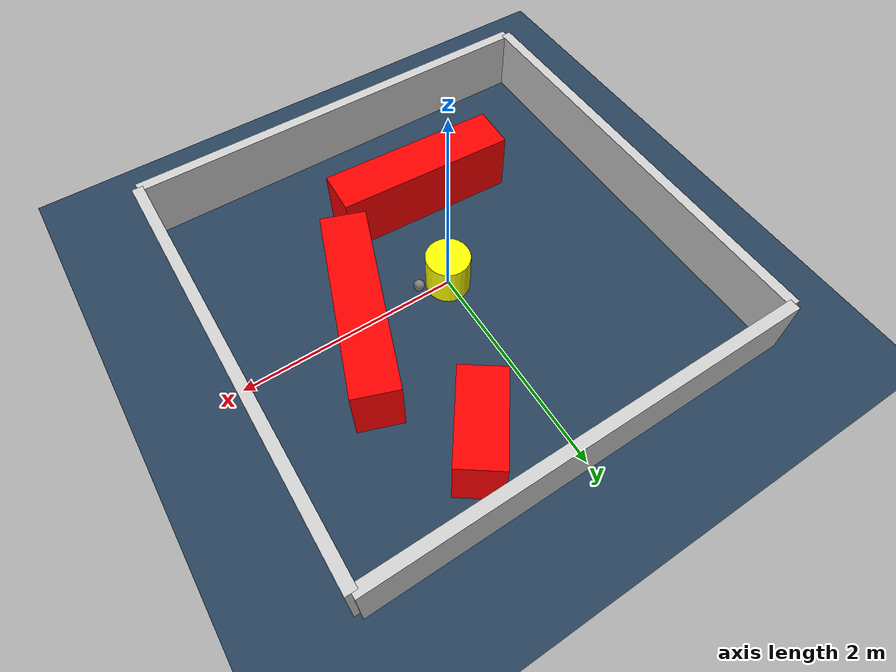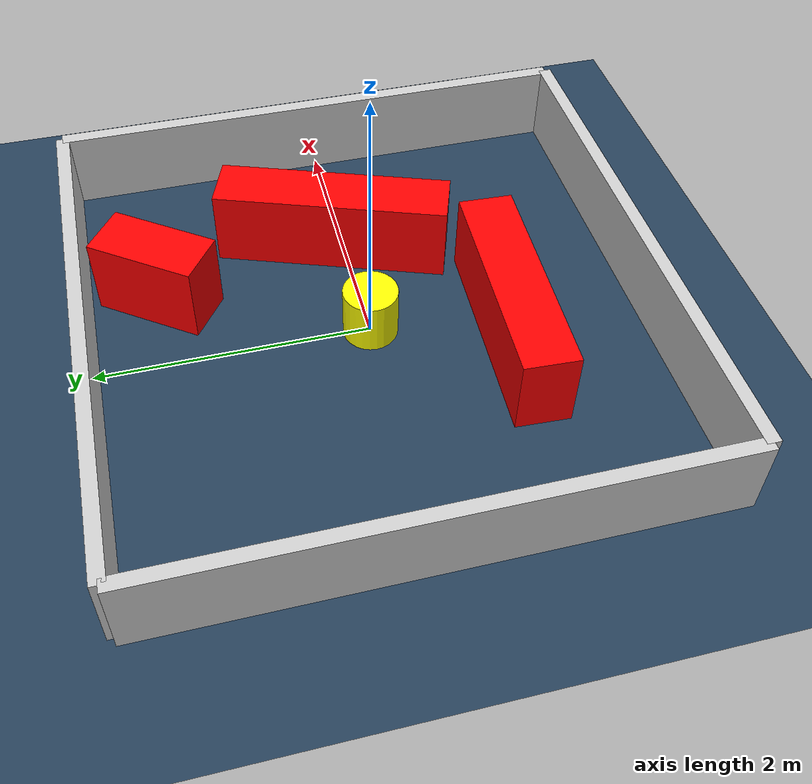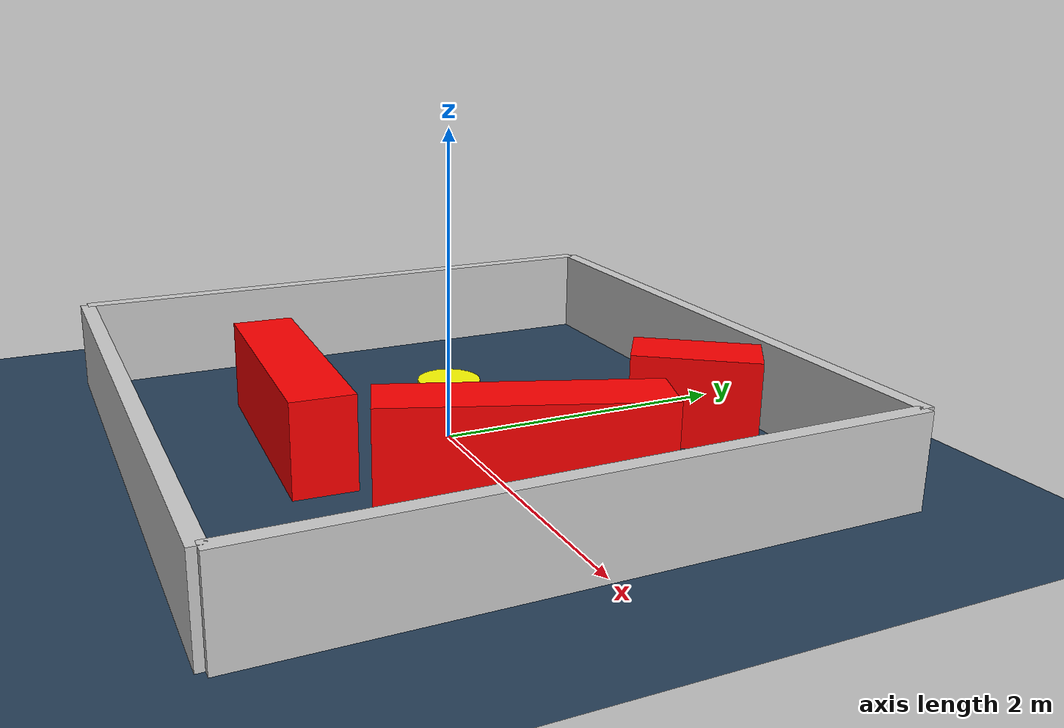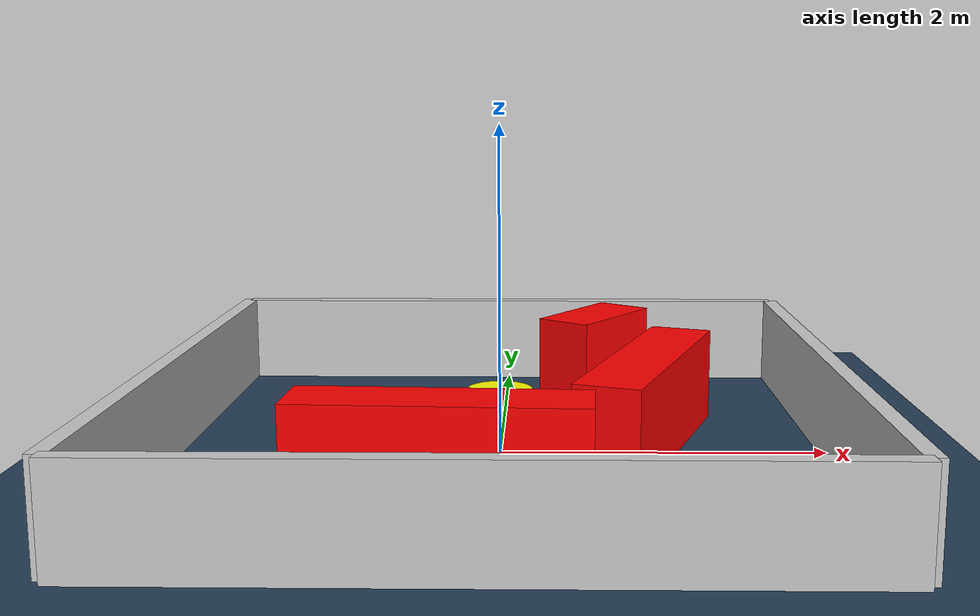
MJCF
<?xml version="1.0" ?>
<mujoco model="generated_environment">
  <option timestep="0.01" integrator="RK4" cone="elliptic"/>
  <default>
    <geom density="1"/>
  </default>
  <asset>
    <texture builtin="gradient" height="3072" rgb1="0.3 0.5 0.7" rgb2="0 0 0" type="skybox" width="512"/>
    <texture builtin="checker" height="300" mark="edge" markrgb="0.8 0.8 0.8" name="groundplane" rgb1="0.2 0.3 0.4" rgb2="0.1 0.2 0.3" type="2d" width="300"/>
    <material name="groundplane" reflectance="0.2" texrepeat="5 5" texture="groundplane" texuniform="true"/>
    <material name="robot" rgba="0.0 1.0 0.0 1"/>
  </asset>
  <worldbody>
    <light dir="0 0 -1" directional="true" pos="0 0 1.5"/>
    <geom condim="4" friction="1.0 0.005 0.001" material="groundplane" name="floor" size="0 0 0.05" type="plane"/>
    <body name="walls">
      <geom name="wall_1" condim="4" pos="-2.0 0.0 0.3" rgba="0.800000011920929 0.800000011920929 0.800000011920929 1.0" size="0.05 2.0 0.3" type="box"/>
      <geom name="wall_2" condim="4" pos="2.0 0.0 0.3" rgba="0.800000011920929 0.800000011920929 0.800000011920929 1.0" size="0.05 2.0 0.3" type="box"/>
      <geom name="wall_3" condim="4" pos="0.0 -2.0 0.3" rgba="0.800000011920929 0.800000011920929 0.800000011920929 1.0" size="2.0 0.05 0.3" type="box"/>
      <geom name="wall_4" condim="4" pos="0.0 2.0 0.3" rgba="0.800000011920929 0.800000011920929 0.800000011920929 1.0" size="2.0 0.05 0.3" type="box"/>
    </body>
    <body name="robot">
      <joint name="joint_x" type="slide" pos="0 0 0" axis="1 0 0"/>
      <joint name="joint_y" type="slide" pos="0 0 0" axis="0 1 0"/>
      <geom name="robot" type="sphere" pos="0.3 0.0 0.2" size="0.05" mass="5." friction="1.0 0.005 0.0001" condim="4" rgba="0.5 0.5 0.5 1.0"/>
      <site name="sensor_ball"/>
    </body>
    <body name="obstacle_movable_1">
      <geom name="obstacle_movable_1" condim="4" pos="0.0 0.0 0.2" euler="0 0 0.0" friction="1.0 0.005 0.001" rgba="1.0 1.0 0.0 1.0" size="0.2 0.2 0.0" type="cylinder" mass="0.1"/>
      <joint type="free"/>
    </body>
    <body name="obstacle_2_static">
      <geom name="obstacle_2_static" condim="4" pos="0.9031071473883028 0.07449899052446374 0.3" euler="0 0 250.0825197409075" friction="1.0 0.005 0.001" rgba="1 0 0 1" size="0.8703432451164481 0.2 0.3" type="box"/>
    </body>
    <body name="obstacle_3_static">
      <geom name="obstacle_3_static" condim="4" pos="-0.2856910669008361 -0.9664730787444454 0.3" euler="0 0 357.4567239846031" friction="1.0 0.005 0.001" rgba="1 0 0 1" size="0.8242216747521363 0.2 0.3" type="box"/>
    </body>
    <body name="obstacle_4_static">
      <geom name="obstacle_4_static" condim="4" pos="0.6346850175277452 1.4466256106070599 0.3" euler="0 0 234.66836733328074" friction="1.0 0.005 0.001" rgba="1 0 0 1" size="0.40713854761570445 0.2 0.3" type="box"/>
    </body>
  </worldbody>
  <actuator>
    <motor name="actuator_x" joint="joint_x" gear="1" ctrlrange="-1 1"/>
    <motor name="actuator_y" joint="joint_y" gear="1" ctrlrange="-1 1"/>
  </actuator>
</mujoco>
